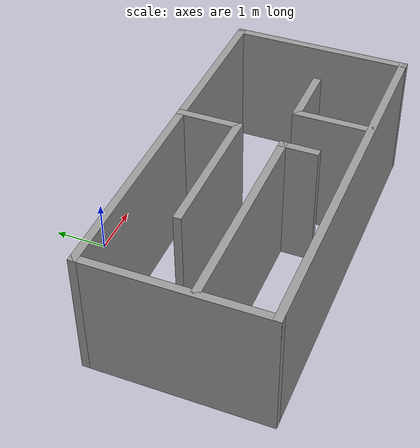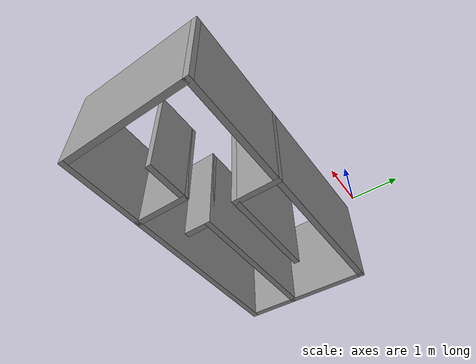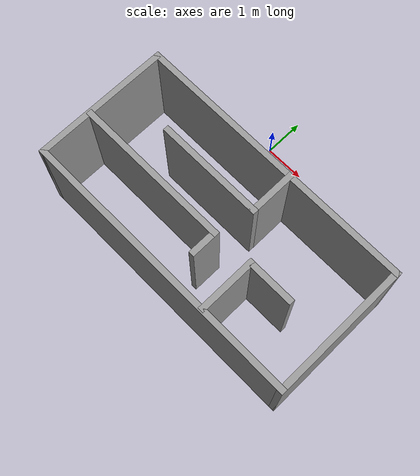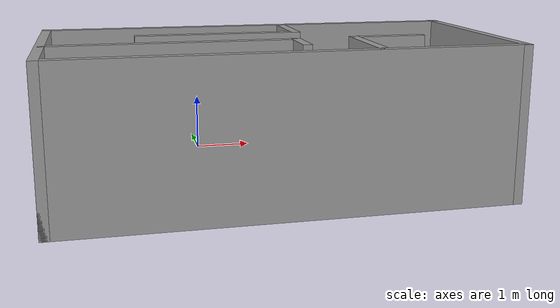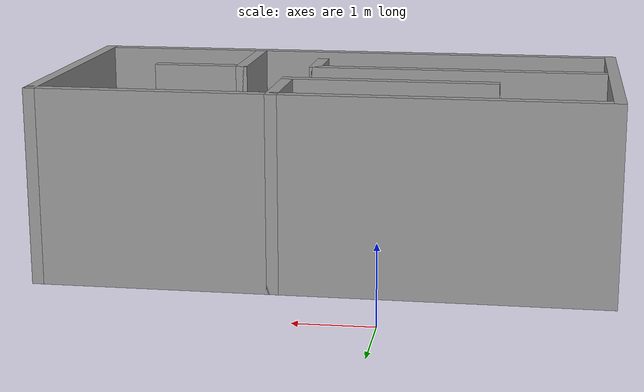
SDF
<?xml version='1.0'?>
<sdf version='1.7'>
  <model name='room'>
    <pose>0.86 -2.2475 0 0 -0 0</pose>
    <link name='Wall_0'>
      <collision name='Wall_0_Collision'>
        <geometry>
          <box>
            <size>3.5 0.15 2.5</size>
          </box>
        </geometry>
        <pose>0 0 1.25 0 -0 0</pose>
      </collision>
      <visual name='Wall_0_Visual'>
        <pose>0 0 1.25 0 -0 0</pose>
        <geometry>
          <box>
            <size>3.5 0.15 2.5</size>
          </box>
        </geometry>
        <material>
          <script>
            <uri>file://media/materials/scripts/gazebo.material</uri>
            <name>Gazebo/Grey</name>
          </script>
          <ambient>1 1 1 1</ambient>
        </material>
        <meta>
          <layer>0</layer>
        </meta>
      </visual>
      <pose>-3.55 -0.4975 0 0 -0 -1.5708</pose>
    </link>
    <link name='Wall_1'>
      <collision name='Wall_1_Collision'>
        <geometry>
          <box>
            <size>7.25 0.15 2.5</size>
          </box>
        </geometry>
        <pose>0 0 1.25 0 -0 0</pose>
      </collision>
      <visual name='Wall_1_Visual'>
        <pose>0 0 1.25 0 -0 0</pose>
        <geometry>
          <box>
            <size>7.25 0.15 2.5</size>
          </box>
        </geometry>
        <material>
          <script>
            <uri>file://media/materials/scripts/gazebo.material</uri>
            <name>Gazebo/Grey</name>
          </script>
          <ambient>1 1 1 1</ambient>
        </material>
        <meta>
          <layer>0</layer>
        </meta>
      </visual>
      <pose>0 -2.1725 0 0 -0 0</pose>
    </link>
    <link name='Wall_11'>
      <collision name='Wall_11_Collision'>
        <geometry>
          <box>
            <size>1.5 0.15 2.5</size>
          </box>
        </geometry>
        <pose>0 0 1.25 0 -0 0</pose>
      </collision>
      <visual name='Wall_11_Visual'>
        <pose>0 0 1.25 0 -0 0</pose>
        <geometry>
          <box>
            <size>1.5 0.15 2.5</size>
          </box>
        </geometry>
        <material>
          <script>
            <uri>file://media/materials/scripts/gazebo.material</uri>
            <name>Gazebo/Grey</name>
          </script>
          <ambient>1 1 1 1</ambient>
        </material>
        <meta>
          <layer>0</layer>
        </meta>
      </visual>
      <pose>1.32 -1.4575 0 0 -0 1.5708</pose>
    </link>
    <link name='Wall_12'>
      <collision name='Wall_12_Collision'>
        <geometry>
          <box>
            <size>1.25 0.15 2.5</size>
          </box>
        </geometry>
        <pose>0 0 1.25 0 -0 0</pose>
      </collision>
      <visual name='Wall_12_Visual'>
        <pose>0 0 1.25 0 -0 0</pose>
        <geometry>
          <box>
            <size>1.25 0.15 2.5</size>
          </box>
        </geometry>
        <material>
          <script>
            <uri>file://media/materials/scripts/gazebo.material</uri>
            <name>Gazebo/Grey</name>
          </script>
          <ambient>1 1 1 1</ambient>
        </material>
        <meta>
          <layer>0</layer>
        </meta>
      </visual>
      <pose>1.87 -0.7825 0 0 -0 0</pose>
    </link>
    <link name='Wall_2'>
      <collision name='Wall_2_Collision'>
        <geometry>
          <box>
            <size>3.5 0.15 2.5</size>
          </box>
        </geometry>
        <pose>0 0 1.25 0 -0 0</pose>
      </collision>
      <visual name='Wall_2_Visual'>
        <pose>0 0 1.25 0 -0 0</pose>
        <geometry>
          <box>
            <size>3.5 0.15 2.5</size>
          </box>
        </geometry>
        <material>
          <script>
            <uri>file://media/materials/scripts/gazebo.material</uri>
            <name>Gazebo/Grey</name>
          </script>
          <ambient>1 1 1 1</ambient>
        </material>
        <meta>
          <layer>0</layer>
        </meta>
      </visual>
      <pose>3.55 -0.4975 0 0 -0 1.5708</pose>
    </link>
    <link name='Wall_3'>
      <collision name='Wall_3_Collision'>
        <geometry>
          <box>
            <size>7.25 0.15 2.5</size>
          </box>
        </geometry>
        <pose>0 0 1.25 0 -0 0</pose>
      </collision>
      <visual name='Wall_3_Visual'>
        <pose>0 0 1.25 0 -0 0</pose>
        <geometry>
          <box>
            <size>7.25 0.15 2.5</size>
          </box>
        </geometry>
        <material>
          <script>
            <uri>file://media/materials/scripts/gazebo.material</uri>
            <name>Gazebo/Grey</name>
          </script>
          <ambient>1 1 1 1</ambient>
        </material>
        <meta>
          <layer>0</layer>
        </meta>
      </visual>
      <pose>0 1.1775 0 0 -0 3.14159</pose>
    </link>
    <link name='Wall_5'>
      <collision name='Wall_5_Collision'>
        <geometry>
          <box>
            <size>1.25 0.15 2.5</size>
          </box>
        </geometry>
        <pose>0 0 1.25 0 -0 0</pose>
      </collision>
      <visual name='Wall_5_Visual'>
        <pose>0 0 1.25 0 -0 0</pose>
        <geometry>
          <box>
            <size>1.25 0.15 2.5</size>
          </box>
        </geometry>
        <material>
          <script>
            <uri>file://media/materials/scripts/gazebo.material</uri>
            <name>Gazebo/Grey</name>
          </script>
          <ambient>1 1 1 1</ambient>
        </material>
        <meta>
          <layer>0</layer>
        </meta>
      </visual>
      <pose>0.55 0.6275 0 0 -0 -1.5708</pose>
    </link>
    <link name='Wall_6'>
      <collision name='Wall_6_Collision'>
        <geometry>
          <box>
            <size>2.75 0.15 2.5</size>
          </box>
        </geometry>
        <pose>0 0 1.25 0 -0 0</pose>
      </collision>
      <visual name='Wall_6_Visual'>
        <pose>0 0 1.25 0 -0 0</pose>
        <geometry>
          <box>
            <size>2.75 0.15 2.5</size>
          </box>
        </geometry>
        <material>
          <script>
            <uri>file://media/materials/scripts/gazebo.material</uri>
            <name>Gazebo/Grey</name>
          </script>
          <ambient>1 1 1 1</ambient>
        </material>
        <meta>
          <layer>0</layer>
        </meta>
      </visual>
      <pose>-0.75 0.0775 0 0 -0 3.14159</pose>
    </link>
    <link name='Wall_8'>
      <collision name='Wall_8_Collision'>
        <geometry>
          <box>
            <size>4 0.15 2.5</size>
          </box>
        </geometry>
        <pose>0 0 1.25 0 -0 0</pose>
      </collision>
      <visual name='Wall_8_Visual'>
        <pose>0 0 1.25 0 -0 0</pose>
        <geometry>
          <box>
            <size>4 0.15 2.5</size>
          </box>
        </geometry>
        <material>
          <script>
            <uri>file://media/materials/scripts/gazebo.material</uri>
            <name>Gazebo/Grey</name>
          </script>
          <ambient>1 1 1 1</ambient>
        </material>
        <meta>
          <layer>0</layer>
        </meta>
      </visual>
      <pose>-1.585 -0.8525 0 0 -0 0</pose>
    </link>
    <link name='Wall_9'>
      <collision name='Wall_9_Collision'>
        <geometry>
          <box>
            <size>0.75 0.15 2.5</size>
          </box>
        </geometry>
        <pose>0 0 1.25 0 -0 0</pose>
      </collision>
      <visual name='Wall_9_Visual'>
        <pose>0 0 1.25 0 -0 0</pose>
        <geometry>
          <box>
            <size>0.75 0.15 2.5</size>
          </box>
        </geometry>
        <material>
          <script>
            <uri>file://media/materials/scripts/gazebo.material</uri>
            <name>Gazebo/Grey</name>
          </script>
          <ambient>1 1 1 1</ambient>
        </material>
        <meta>
          <layer>0</layer>
        </meta>
      </visual>
      <pose>0.34 -1.1525 0 0 -0 -1.5708</pose>
    </link>
    <static>1</static>
  </model>
</sdf>
